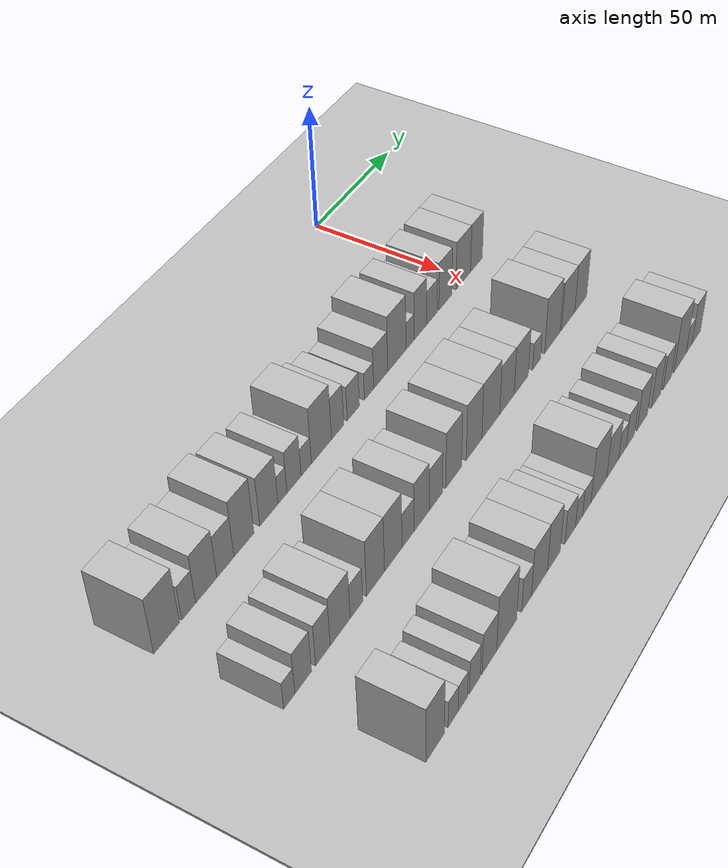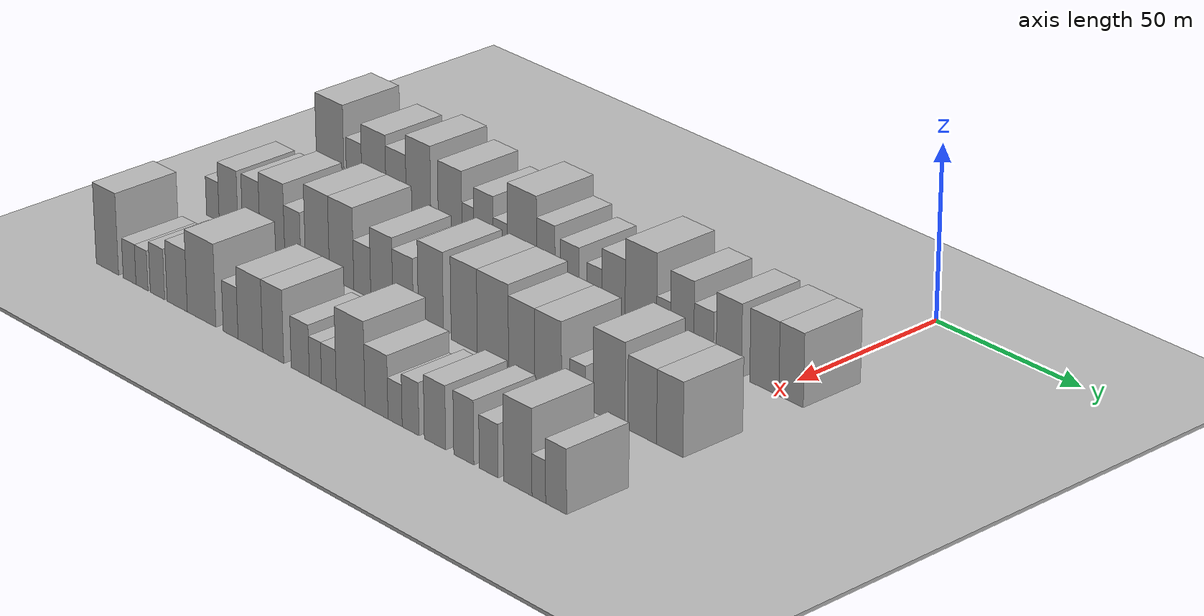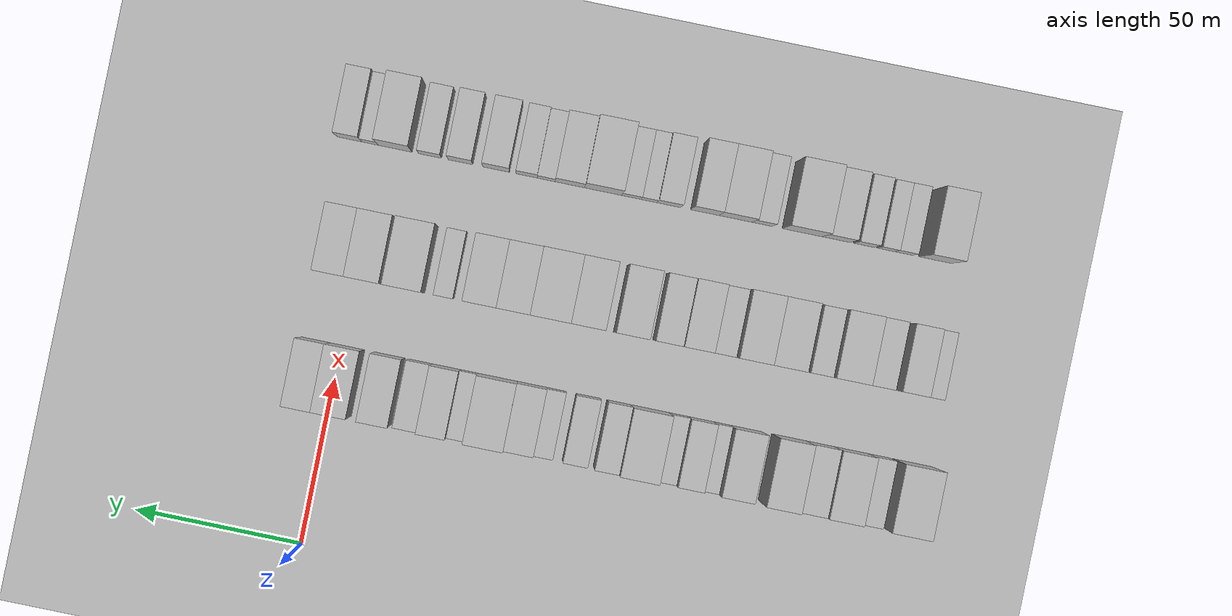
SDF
<sdf version="1.6">
 <world name="default">
  <include><name>ground_plane_1</name><uri>model://HANNAS_ground_plane</uri></include>
  <include>
   <name>ground_plane_2</name>
   <uri>model://HANNAS_ground_plane</uri>
   <pose>100 0 0  0 0 0</pose>
  </include>
  <model name="building_26">
   <static>1</static>
   <pose>50.0000 -172.1616 0 0.000000 0.000000 0.000000</pose>
   <link name="link">
    <pose>0 0 12.00 0 0 0</pose>
    <collision name="collision"><geometry><box><size>20.0000 11.8538 24.0000</size></box></geometry></collision>
    <visual name="visual">
     <cast_shadows>0</cast_shadows>
     <geometry><box><size>20.0000 11.8538 24.0000</size></box></geometry>
     <material>
      <script>
       <uri>model://HANNAS_wall/materials/scripts</uri>
       <uri>model://HANNAS_wall/materials/textures</uri>
       <name>vrc/HANNAS_wall</name>
      </script>
     </material>
    </visual>
   </link>
  </model>
  <model name="building_27">
   <static>1</static>
   <pose>50.0000 -161.9523 0 0.000000 0.000000 0.000000</pose>
   <link name="link">
    <pose>0 0 7.50 0 0 0</pose>
    <collision name="collision"><geometry><box><size>20.0000 6.5650 15.0000</size></box></geometry></collision>
    <visual name="visual">
     <cast_shadows>0</cast_shadows>
     <geometry><box><size>20.0000 6.5650 15.0000</size></box></geometry>
     <material>
      <script>
       <uri>model://HANNAS_wall/materials/scripts</uri>
       <uri>model://HANNAS_wall/materials/textures</uri>
       <name>vrc/HANNAS_wall</name>
      </script>
     </material>
    </visual>
   </link>
  </model>
  <model name="building_28">
   <static>1</static>
   <pose>50.0000 -153.5523 0 0.000000 0.000000 0.000000</pose>
   <link name="link">
    <pose>0 0 10.50 0 0 0</pose>
    <collision name="collision"><geometry><box><size>20.0000 10.2349 21.0000</size></box></geometry></collision>
    <visual name="visual">
     <cast_shadows>0</cast_shadows>
     <geometry><box><size>20.0000 10.2349 21.0000</size></box></geometry>
     <material>
      <script>
       <uri>model://HANNAS_wall/materials/scripts</uri>
       <uri>model://HANNAS_wall/materials/textures</uri>
       <name>vrc/HANNAS_wall</name>
      </script>
     </material>
    </visual>
   </link>
  </model>
  <model name="building_29">
   <static>1</static>
   <pose>50.0000 -144.1929 0 0.000000 0.000000 0.000000</pose>
   <link name="link">
    <pose>0 0 9.00 0 0 0</pose>
    <collision name="collision"><geometry><box><size>20.0000 8.4840 18.0000</size></box></geometry></collision>
    <visual name="visual">
     <cast_shadows>0</cast_shadows>
     <geometry><box><size>20.0000 8.4840 18.0000</size></box></geometry>
     <material>
      <script>
       <uri>model://HANNAS_wall/materials/scripts</uri>
       <uri>model://HANNAS_wall/materials/textures</uri>
       <name>vrc/HANNAS_wall</name>
      </script>
     </material>
    </visual>
   </link>
  </model>
  <model name="building_30">
   <static>1</static>
   <pose>50.0000 -134.8490 0 0.000000 0.000000 0.000000</pose>
   <link name="link">
    <pose>0 0 12.00 0 0 0</pose>
    <collision name="collision"><geometry><box><size>20.0000 10.2038 24.0000</size></box></geometry></collision>
    <visual name="visual">
     <cast_shadows>0</cast_shadows>
     <geometry><box><size>20.0000 10.2038 24.0000</size></box></geometry>
     <material>
      <script>
       <uri>model://HANNAS_wall/materials/scripts</uri>
       <uri>model://HANNAS_wall/materials/textures</uri>
       <name>vrc/HANNAS_wall</name>
      </script>
     </material>
    </visual>
   </link>
  </model>
  <model name="building_31">
   <static>1</static>
   <pose>50.0000 -121.8884 0 0.000000 0.000000 0.000000</pose>
   <link name="link">
    <pose>0 0 10.50 0 0 0</pose>
    <collision name="collision"><geometry><box><size>20.0000 9.7175 21.0000</size></box></geometry></collision>
    <visual name="visual">
     <cast_shadows>0</cast_shadows>
     <geometry><box><size>20.0000 9.7175 21.0000</size></box></geometry>
     <material>
      <script>
       <uri>model://HANNAS_wall/materials/scripts</uri>
       <uri>model://HANNAS_wall/materials/textures</uri>
       <name>vrc/HANNAS_wall</name>
      </script>
     </material>
    </visual>
   </link>
  </model>
  <model name="building_32">
   <static>1</static>
   <pose>50.0000 -114.6272 0 0.000000 0.000000 0.000000</pose>
   <link name="link">
    <pose>0 0 6.00 0 0 0</pose>
    <collision name="collision"><geometry><box><size>20.0000 4.8048 12.0000</size></box></geometry></collision>
    <visual name="visual">
     <cast_shadows>0</cast_shadows>
     <geometry><box><size>20.0000 4.8048 12.0000</size></box></geometry>
     <material>
      <script>
       <uri>model://HANNAS_wall/materials/scripts</uri>
       <uri>model://HANNAS_wall/materials/textures</uri>
       <name>vrc/HANNAS_wall</name>
      </script>
     </material>
    </visual>
   </link>
  </model>
  <model name="building_33">
   <static>1</static>
   <pose>50.0000 -108.3308 0 0.000000 0.000000 0.000000</pose>
   <link name="link">
    <pose>0 0 9.00 0 0 0</pose>
    <collision name="collision"><geometry><box><size>20.0000 7.7881 18.0000</size></box></geometry></collision>
    <visual name="visual">
     <cast_shadows>0</cast_shadows>
     <geometry><box><size>20.0000 7.7881 18.0000</size></box></geometry>
     <material>
      <script>
       <uri>model://HANNAS_wall/materials/scripts</uri>
       <uri>model://HANNAS_wall/materials/textures</uri>
       <name>vrc/HANNAS_wall</name>
      </script>
     </material>
    </visual>
   </link>
  </model>
  <model name="building_34">
   <static>1</static>
   <pose>50.0000 -101.5725 0 0.000000 0.000000 0.000000</pose>
   <link name="link">
    <pose>0 0 6.00 0 0 0</pose>
    <collision name="collision"><geometry><box><size>20.0000 5.7284 12.0000</size></box></geometry></collision>
    <visual name="visual">
     <cast_shadows>0</cast_shadows>
     <geometry><box><size>20.0000 5.7284 12.0000</size></box></geometry>
     <material>
      <script>
       <uri>model://HANNAS_wall/materials/scripts</uri>
       <uri>model://HANNAS_wall/materials/textures</uri>
       <name>vrc/HANNAS_wall</name>
      </script>
     </material>
    </visual>
   </link>
  </model>
  <model name="building_35">
   <static>1</static>
   <pose>50.0000 -92.9462 0 0.000000 0.000000 0.000000</pose>
   <link name="link">
    <pose>0 0 12.00 0 0 0</pose>
    <collision name="collision"><geometry><box><size>20.0000 11.5243 24.0000</size></box></geometry></collision>
    <visual name="visual">
     <cast_shadows>0</cast_shadows>
     <geometry><box><size>20.0000 11.5243 24.0000</size></box></geometry>
     <material>
      <script>
       <uri>model://HANNAS_wall/materials/scripts</uri>
       <uri>model://HANNAS_wall/materials/textures</uri>
       <name>vrc/HANNAS_wall</name>
      </script>
     </material>
    </visual>
   </link>
  </model>
  <model name="building_36">
   <static>1</static>
   <pose>50.0000 -83.5788 0 0.000000 0.000000 0.000000</pose>
   <link name="link">
    <pose>0 0 9.00 0 0 0</pose>
    <collision name="collision"><geometry><box><size>20.0000 7.2106 18.0000</size></box></geometry></collision>
    <visual name="visual">
     <cast_shadows>0</cast_shadows>
     <geometry><box><size>20.0000 7.2106 18.0000</size></box></geometry>
     <material>
      <script>
       <uri>model://HANNAS_wall/materials/scripts</uri>
       <uri>model://HANNAS_wall/materials/textures</uri>
       <name>vrc/HANNAS_wall</name>
      </script>
     </material>
    </visual>
   </link>
  </model>
  <model name="building_37">
   <static>1</static>
   <pose>50.0000 -74.3112 0 0.000000 0.000000 0.000000</pose>
   <link name="link">
    <pose>0 0 7.50 0 0 0</pose>
    <collision name="collision"><geometry><box><size>20.0000 7.3245 15.0000</size></box></geometry></collision>
    <visual name="visual">
     <cast_shadows>0</cast_shadows>
     <geometry><box><size>20.0000 7.3245 15.0000</size></box></geometry>
     <material>
      <script>
       <uri>model://HANNAS_wall/materials/scripts</uri>
       <uri>model://HANNAS_wall/materials/textures</uri>
       <name>vrc/HANNAS_wall</name>
      </script>
     </material>
    </visual>
   </link>
  </model>
  <model name="building_38">
   <static>1</static>
   <pose>50.0000 -64.7647 0 0.000000 0.000000 0.000000</pose>
   <link name="link">
    <pose>0 0 6.00 0 0 0</pose>
    <collision name="collision"><geometry><box><size>20.0000 5.7685 12.0000</size></box></geometry></collision>
    <visual name="visual">
     <cast_shadows>0</cast_shadows>
     <geometry><box><size>20.0000 5.7685 12.0000</size></box></geometry>
     <material>
      <script>
       <uri>model://HANNAS_wall/materials/scripts</uri>
       <uri>model://HANNAS_wall/materials/textures</uri>
       <name>vrc/HANNAS_wall</name>
      </script>
     </material>
    </visual>
   </link>
  </model>
  <model name="building_39">
   <static>1</static>
   <pose>50.0000 -57.4368 0 0.000000 0.000000 0.000000</pose>
   <link name="link">
    <pose>0 0 9.00 0 0 0</pose>
    <collision name="collision"><geometry><box><size>20.0000 8.8873 18.0000</size></box></geometry></collision>
    <visual name="visual">
     <cast_shadows>0</cast_shadows>
     <geometry><box><size>20.0000 8.8873 18.0000</size></box></geometry>
     <material>
      <script>
       <uri>model://HANNAS_wall/materials/scripts</uri>
       <uri>model://HANNAS_wall/materials/textures</uri>
       <name>vrc/HANNAS_wall</name>
      </script>
     </material>
    </visual>
   </link>
  </model>
  <model name="building_40">
   <static>1</static>
   <pose>50.0000 -47.0714 0 0.000000 0.000000 0.000000</pose>
   <link name="link">
    <pose>0 0 12.00 0 0 0</pose>
    <collision name="collision"><geometry><box><size>20.0000 11.8436 24.0000</size></box></geometry></collision>
    <visual name="visual">
     <cast_shadows>0</cast_shadows>
     <geometry><box><size>20.0000 11.8436 24.0000</size></box></geometry>
     <material>
      <script>
       <uri>model://HANNAS_wall/materials/scripts</uri>
       <uri>model://HANNAS_wall/materials/textures</uri>
       <name>vrc/HANNAS_wall</name>
      </script>
     </material>
    </visual>
   </link>
  </model>
  <model name="building_41">
   <static>1</static>
   <pose>50.0000 -38.5589 0 0.000000 0.000000 0.000000</pose>
   <link name="link">
    <pose>0 0 6.00 0 0 0</pose>
    <collision name="collision"><geometry><box><size>20.0000 5.1813 12.0000</size></box></geometry></collision>
    <visual name="visual">
     <cast_shadows>0</cast_shadows>
     <geometry><box><size>20.0000 5.1813 12.0000</size></box></geometry>
     <material>
      <script>
       <uri>model://HANNAS_wall/materials/scripts</uri>
       <uri>model://HANNAS_wall/materials/textures</uri>
       <name>vrc/HANNAS_wall</name>
      </script>
     </material>
    </visual>
   </link>
  </model>
  <model name="building_42">
   <static>1</static>
   <pose>50.0000 -31.6654 0 0.000000 0.000000 0.000000</pose>
   <link name="link">
    <pose>0 0 10.50 0 0 0</pose>
    <collision name="collision"><geometry><box><size>20.0000 8.6056 21.0000</size></box></geometry></collision>
    <visual name="visual">
     <cast_shadows>0</cast_shadows>
     <geometry><box><size>20.0000 8.6056 21.0000</size></box></geometry>
     <material>
      <script>
       <uri>model://HANNAS_wall/materials/scripts</uri>
       <uri>model://HANNAS_wall/materials/textures</uri>
       <name>vrc/HANNAS_wall</name>
      </script>
     </material>
    </visual>
   </link>
  </model>
  <model name="building_43">
   <static>1</static>
   <pose>50.0000 -23.7713 0 0.000000 0.000000 0.000000</pose>
   <link name="link">
    <pose>0 0 7.50 0 0 0</pose>
    <collision name="collision"><geometry><box><size>20.0000 7.1827 15.0000</size></box></geometry></collision>
    <visual name="visual">
     <cast_shadows>0</cast_shadows>
     <geometry><box><size>20.0000 7.1827 15.0000</size></box></geometry>
     <material>
      <script>
       <uri>model://HANNAS_wall/materials/scripts</uri>
       <uri>model://HANNAS_wall/materials/textures</uri>
       <name>vrc/HANNAS_wall</name>
      </script>
     </material>
    </visual>
   </link>
  </model>
  <model name="building_44">
   <static>1</static>
   <pose>50.0000 -14.5887 0 0.000000 0.000000 0.000000</pose>
   <link name="link">
    <pose>0 0 10.50 0 0 0</pose>
    <collision name="collision"><geometry><box><size>20.0000 9.1826 21.0000</size></box></geometry></collision>
    <visual name="visual">
     <cast_shadows>0</cast_shadows>
     <geometry><box><size>20.0000 9.1826 21.0000</size></box></geometry>
     <material>
      <script>
       <uri>model://HANNAS_wall/materials/scripts</uri>
       <uri>model://HANNAS_wall/materials/textures</uri>
       <name>vrc/HANNAS_wall</name>
      </script>
     </material>
    </visual>
   </link>
  </model>
  <model name="building_45">
   <static>1</static>
   <pose>50.0000 -1.8002 0 0.000000 0.000000 0.000000</pose>
   <link name="link">
    <pose>0 0 10.50 0 0 0</pose>
    <collision name="collision"><geometry><box><size>20.0000 10.3943 21.0000</size></box></geometry></collision>
    <visual name="visual">
     <cast_shadows>0</cast_shadows>
     <geometry><box><size>20.0000 10.3943 21.0000</size></box></geometry>
     <material>
      <script>
       <uri>model://HANNAS_wall/materials/scripts</uri>
       <uri>model://HANNAS_wall/materials/textures</uri>
       <name>vrc/HANNAS_wall</name>
      </script>
     </material>
    </visual>
   </link>
  </model>
  <model name="building_46">
   <static>1</static>
   <pose>50.0000 7.7302 0 0.000000 0.000000 0.000000</pose>
   <link name="link">
    <pose>0 0 10.50 0 0 0</pose>
    <collision name="collision"><geometry><box><size>20.0000 8.6666 21.0000</size></box></geometry></collision>
    <visual name="visual">
     <cast_shadows>0</cast_shadows>
     <geometry><box><size>20.0000 8.6666 21.0000</size></box></geometry>
     <material>
      <script>
       <uri>model://HANNAS_wall/materials/scripts</uri>
       <uri>model://HANNAS_wall/materials/textures</uri>
       <name>vrc/HANNAS_wall</name>
      </script>
     </material>
    </visual>
   </link>
  </model>
  <model name="building_104">
   <static>1</static>
   <pose>90.0000 -173.0271 0 0.000000 0.000000 0.000000</pose>
   <link name="link">
    <pose>0 0 6.00 0 0 0</pose>
    <collision name="collision"><geometry><box><size>20.0000 5.4462 12.0000</size></box></geometry></collision>
    <visual name="visual">
     <cast_shadows>0</cast_shadows>
     <geometry><box><size>20.0000 5.4462 12.0000</size></box></geometry>
     <material>
      <script>
       <uri>model://HANNAS_wall/materials/scripts</uri>
       <uri>model://HANNAS_wall/materials/textures</uri>
       <name>vrc/HANNAS_wall</name>
      </script>
     </material>
    </visual>
   </link>
  </model>
  <model name="building_105">
   <static>1</static>
   <pose>90.0000 -166.2222 0 0.000000 0.000000 0.000000</pose>
   <link name="link">
    <pose>0 0 9.00 0 0 0</pose>
    <collision name="collision"><geometry><box><size>20.0000 8.1636 18.0000</size></box></geometry></collision>
    <visual name="visual">
     <cast_shadows>0</cast_shadows>
     <geometry><box><size>20.0000 8.1636 18.0000</size></box></geometry>
     <material>
      <script>
       <uri>model://HANNAS_wall/materials/scripts</uri>
       <uri>model://HANNAS_wall/materials/textures</uri>
       <name>vrc/HANNAS_wall</name>
      </script>
     </material>
    </visual>
   </link>
  </model>
  <model name="building_106">
   <static>1</static>
   <pose>90.0000 -156.4348 0 0.000000 0.000000 0.000000</pose>
   <link name="link">
    <pose>0 0 9.00 0 0 0</pose>
    <collision name="collision"><geometry><box><size>20.0000 7.4114 18.0000</size></box></geometry></collision>
    <visual name="visual">
     <cast_shadows>0</cast_shadows>
     <geometry><box><size>20.0000 7.4114 18.0000</size></box></geometry>
     <material>
      <script>
       <uri>model://HANNAS_wall/materials/scripts</uri>
       <uri>model://HANNAS_wall/materials/textures</uri>
       <name>vrc/HANNAS_wall</name>
      </script>
     </material>
    </visual>
   </link>
  </model>
  <model name="building_107">
   <static>1</static>
   <pose>90.0000 -147.5158 0 0.000000 0.000000 0.000000</pose>
   <link name="link">
    <pose>0 0 10.50 0 0 0</pose>
    <collision name="collision"><geometry><box><size>20.0000 10.4265 21.0000</size></box></geometry></collision>
    <visual name="visual">
     <cast_shadows>0</cast_shadows>
     <geometry><box><size>20.0000 10.4265 21.0000</size></box></geometry>
     <material>
      <script>
       <uri>model://HANNAS_wall/materials/scripts</uri>
       <uri>model://HANNAS_wall/materials/textures</uri>
       <name>vrc/HANNAS_wall</name>
      </script>
     </material>
    </visual>
   </link>
  </model>
  <model name="building_108">
   <static>1</static>
   <pose>90.0000 -138.9474 0 0.000000 0.000000 0.000000</pose>
   <link name="link">
    <pose>0 0 7.50 0 0 0</pose>
    <collision name="collision"><geometry><box><size>20.0000 6.7103 15.0000</size></box></geometry></collision>
    <visual name="visual">
     <cast_shadows>0</cast_shadows>
     <geometry><box><size>20.0000 6.7103 15.0000</size></box></geometry>
     <material>
      <script>
       <uri>model://HANNAS_wall/materials/scripts</uri>
       <uri>model://HANNAS_wall/materials/textures</uri>
       <name>vrc/HANNAS_wall</name>
      </script>
     </material>
    </visual>
   </link>
  </model>
  <model name="building_109">
   <static>1</static>
   <pose>90.0000 -128.6199 0 0.000000 0.000000 0.000000</pose>
   <link name="link">
    <pose>0 0 12.00 0 0 0</pose>
    <collision name="collision"><geometry><box><size>20.0000 9.9446 24.0000</size></box></geometry></collision>
    <visual name="visual">
     <cast_shadows>0</cast_shadows>
     <geometry><box><size>20.0000 9.9446 24.0000</size></box></geometry>
     <material>
      <script>
       <uri>model://HANNAS_wall/materials/scripts</uri>
       <uri>model://HANNAS_wall/materials/textures</uri>
       <name>vrc/HANNAS_wall</name>
      </script>
     </material>
    </visual>
   </link>
  </model>
  <model name="building_110">
   <static>1</static>
   <pose>90.0000 -118.6538 0 0.000000 0.000000 0.000000</pose>
   <link name="link">
    <pose>0 0 12.00 0 0 0</pose>
    <collision name="collision"><geometry><box><size>20.0000 9.9877 24.0000</size></box></geometry></collision>
    <visual name="visual">
     <cast_shadows>0</cast_shadows>
     <geometry><box><size>20.0000 9.9877 24.0000</size></box></geometry>
     <material>
      <script>
       <uri>model://HANNAS_wall/materials/scripts</uri>
       <uri>model://HANNAS_wall/materials/textures</uri>
       <name>vrc/HANNAS_wall</name>
      </script>
     </material>
    </visual>
   </link>
  </model>
  <model name="building_111">
   <static>1</static>
   <pose>90.0000 -110.2204 0 0.000000 0.000000 0.000000</pose>
   <link name="link">
    <pose>0 0 7.50 0 0 0</pose>
    <collision name="collision"><geometry><box><size>20.0000 6.8791 15.0000</size></box></geometry></collision>
    <visual name="visual">
     <cast_shadows>0</cast_shadows>
     <geometry><box><size>20.0000 6.8791 15.0000</size></box></geometry>
     <material>
      <script>
       <uri>model://HANNAS_wall/materials/scripts</uri>
       <uri>model://HANNAS_wall/materials/textures</uri>
       <name>vrc/HANNAS_wall</name>
      </script>
     </material>
    </visual>
   </link>
  </model>
  <model name="building_112">
   <static>1</static>
   <pose>90.0000 -102.3337 0 0.000000 0.000000 0.000000</pose>
   <link name="link">
    <pose>0 0 10.50 0 0 0</pose>
    <collision name="collision"><geometry><box><size>20.0000 8.8944 21.0000</size></box></geometry></collision>
    <visual name="visual">
     <cast_shadows>0</cast_shadows>
     <geometry><box><size>20.0000 8.8944 21.0000</size></box></geometry>
     <material>
      <script>
       <uri>model://HANNAS_wall/materials/scripts</uri>
       <uri>model://HANNAS_wall/materials/textures</uri>
       <name>vrc/HANNAS_wall</name>
      </script>
     </material>
    </visual>
   </link>
  </model>
  <model name="building_113">
   <static>1</static>
   <pose>90.0000 -93.7982 0 0.000000 0.000000 0.000000</pose>
   <link name="link">
    <pose>0 0 9.00 0 0 0</pose>
    <collision name="collision"><geometry><box><size>20.0000 8.1766 18.0000</size></box></geometry></collision>
    <visual name="visual">
     <cast_shadows>0</cast_shadows>
     <geometry><box><size>20.0000 8.1766 18.0000</size></box></geometry>
     <material>
      <script>
       <uri>model://HANNAS_wall/materials/scripts</uri>
       <uri>model://HANNAS_wall/materials/textures</uri>
       <name>vrc/HANNAS_wall</name>
      </script>
     </material>
    </visual>
   </link>
  </model>
  <model name="building_114">
   <static>1</static>
   <pose>90.0000 -82.7721 0 0.000000 0.000000 0.000000</pose>
   <link name="link">
    <pose>0 0 12.00 0 0 0</pose>
    <collision name="collision"><geometry><box><size>20.0000 9.8756 24.0000</size></box></geometry></collision>
    <visual name="visual">
     <cast_shadows>0</cast_shadows>
     <geometry><box><size>20.0000 9.8756 24.0000</size></box></geometry>
     <material>
      <script>
       <uri>model://HANNAS_wall/materials/scripts</uri>
       <uri>model://HANNAS_wall/materials/textures</uri>
       <name>vrc/HANNAS_wall</name>
      </script>
     </material>
    </visual>
   </link>
  </model>
  <model name="building_115">
   <static>1</static>
   <pose>90.0000 -69.7514 0 0.000000 0.000000 0.000000</pose>
   <link name="link">
    <pose>0 0 12.00 0 0 0</pose>
    <collision name="collision"><geometry><box><size>20.0000 10.1658 24.0000</size></box></geometry></collision>
    <visual name="visual">
     <cast_shadows>0</cast_shadows>
     <geometry><box><size>20.0000 10.1658 24.0000</size></box></geometry>
     <material>
      <script>
       <uri>model://HANNAS_wall/materials/scripts</uri>
       <uri>model://HANNAS_wall/materials/textures</uri>
       <name>vrc/HANNAS_wall</name>
      </script>
     </material>
    </visual>
   </link>
  </model>
  <model name="building_116">
   <static>1</static>
   <pose>90.0000 -58.6785 0 0.000000 0.000000 0.000000</pose>
   <link name="link">
    <pose>0 0 12.00 0 0 0</pose>
    <collision name="collision"><geometry><box><size>20.0000 11.9799 24.0000</size></box></geometry></collision>
    <visual name="visual">
     <cast_shadows>0</cast_shadows>
     <geometry><box><size>20.0000 11.9799 24.0000</size></box></geometry>
     <material>
      <script>
       <uri>model://HANNAS_wall/materials/scripts</uri>
       <uri>model://HANNAS_wall/materials/textures</uri>
       <name>vrc/HANNAS_wall</name>
      </script>
     </material>
    </visual>
   </link>
  </model>
  <model name="building_117">
   <static>1</static>
   <pose>90.0000 -47.7257 0 0.000000 0.000000 0.000000</pose>
   <link name="link">
    <pose>0 0 10.50 0 0 0</pose>
    <collision name="collision"><geometry><box><size>20.0000 9.9258 21.0000</size></box></geometry></collision>
    <visual name="visual">
     <cast_shadows>0</cast_shadows>
     <geometry><box><size>20.0000 9.9258 21.0000</size></box></geometry>
     <material>
      <script>
       <uri>model://HANNAS_wall/materials/scripts</uri>
       <uri>model://HANNAS_wall/materials/textures</uri>
       <name>vrc/HANNAS_wall</name>
      </script>
     </material>
    </visual>
   </link>
  </model>
  <model name="building_118">
   <static>1</static>
   <pose>90.0000 -37.7651 0 0.000000 0.000000 0.000000</pose>
   <link name="link">
    <pose>0 0 10.50 0 0 0</pose>
    <collision name="collision"><geometry><box><size>20.0000 9.9953 21.0000</size></box></geometry></collision>
    <visual name="visual">
     <cast_shadows>0</cast_shadows>
     <geometry><box><size>20.0000 9.9953 21.0000</size></box></geometry>
     <material>
      <script>
       <uri>model://HANNAS_wall/materials/scripts</uri>
       <uri>model://HANNAS_wall/materials/textures</uri>
       <name>vrc/HANNAS_wall</name>
      </script>
     </material>
    </visual>
   </link>
  </model>
  <model name="building_119">
   <static>1</static>
   <pose>90.0000 -26.8522 0 0.000000 0.000000 0.000000</pose>
   <link name="link">
    <pose>0 0 6.00 0 0 0</pose>
    <collision name="collision"><geometry><box><size>20.0000 5.8307 12.0000</size></box></geometry></collision>
    <visual name="visual">
     <cast_shadows>0</cast_shadows>
     <geometry><box><size>20.0000 5.8307 12.0000</size></box></geometry>
     <material>
      <script>
       <uri>model://HANNAS_wall/materials/scripts</uri>
       <uri>model://HANNAS_wall/materials/textures</uri>
       <name>vrc/HANNAS_wall</name>
      </script>
     </material>
    </visual>
   </link>
  </model>
  <model name="building_120">
   <static>1</static>
   <pose>90.0000 -15.1710 0 0.000000 0.000000 0.000000</pose>
   <link name="link">
    <pose>0 0 12.00 0 0 0</pose>
    <collision name="collision"><geometry><box><size>20.0000 11.5316 24.0000</size></box></geometry></collision>
    <visual name="visual">
     <cast_shadows>0</cast_shadows>
     <geometry><box><size>20.0000 11.5316 24.0000</size></box></geometry>
     <material>
      <script>
       <uri>model://HANNAS_wall/materials/scripts</uri>
       <uri>model://HANNAS_wall/materials/textures</uri>
       <name>vrc/HANNAS_wall</name>
      </script>
     </material>
    </visual>
   </link>
  </model>
  <model name="building_121">
   <static>1</static>
   <pose>90.0000 -3.2397 0 0.000000 0.000000 0.000000</pose>
   <link name="link">
    <pose>0 0 10.50 0 0 0</pose>
    <collision name="collision"><geometry><box><size>20.0000 10.3311 21.0000</size></box></geometry></collision>
    <visual name="visual">
     <cast_shadows>0</cast_shadows>
     <geometry><box><size>20.0000 10.3311 21.0000</size></box></geometry>
     <material>
      <script>
       <uri>model://HANNAS_wall/materials/scripts</uri>
       <uri>model://HANNAS_wall/materials/textures</uri>
       <name>vrc/HANNAS_wall</name>
      </script>
     </material>
    </visual>
   </link>
  </model>
  <model name="building_122">
   <static>1</static>
   <pose>90.0000 6.6247 0 0.000000 0.000000 0.000000</pose>
   <link name="link">
    <pose>0 0 10.50 0 0 0</pose>
    <collision name="collision"><geometry><box><size>20.0000 9.3976 21.0000</size></box></geometry></collision>
    <visual name="visual">
     <cast_shadows>0</cast_shadows>
     <geometry><box><size>20.0000 9.3976 21.0000</size></box></geometry>
     <material>
      <script>
       <uri>model://HANNAS_wall/materials/scripts</uri>
       <uri>model://HANNAS_wall/materials/textures</uri>
       <name>vrc/HANNAS_wall</name>
      </script>
     </material>
    </visual>
   </link>
  </model>
  <model name="building_185">
   <static>1</static>
   <pose>130.0000 -166.6136 0 0.000000 0.000000 0.000000</pose>
   <link name="link">
    <pose>0 0 12.00 0 0 0</pose>
    <collision name="collision"><geometry><box><size>20.0000 9.6881 24.0000</size></box></geometry></collision>
    <visual name="visual">
     <cast_shadows>0</cast_shadows>
     <geometry><box><size>20.0000 9.6881 24.0000</size></box></geometry>
     <material>
      <script>
       <uri>model://HANNAS_wall/materials/scripts</uri>
       <uri>model://HANNAS_wall/materials/textures</uri>
       <name>vrc/HANNAS_wall</name>
      </script>
     </material>
    </visual>
   </link>
  </model>
  <model name="building_186">
   <static>1</static>
   <pose>130.0000 -157.0150 0 0.000000 0.000000 0.000000</pose>
   <link name="link">
    <pose>0 0 6.00 0 0 0</pose>
    <collision name="collision"><geometry><box><size>20.0000 5.5091 12.0000</size></box></geometry></collision>
    <visual name="visual">
     <cast_shadows>0</cast_shadows>
     <geometry><box><size>20.0000 5.5091 12.0000</size></box></geometry>
     <material>
      <script>
       <uri>model://HANNAS_wall/materials/scripts</uri>
       <uri>model://HANNAS_wall/materials/textures</uri>
       <name>vrc/HANNAS_wall</name>
      </script>
     </material>
    </visual>
   </link>
  </model>
  <model name="building_187">
   <static>1</static>
   <pose>130.0000 -151.6876 0 0.000000 0.000000 0.000000</pose>
   <link name="link">
    <pose>0 0 6.00 0 0 0</pose>
    <collision name="collision"><geometry><box><size>20.0000 5.1456 12.0000</size></box></geometry></collision>
    <visual name="visual">
     <cast_shadows>0</cast_shadows>
     <geometry><box><size>20.0000 5.1456 12.0000</size></box></geometry>
     <material>
      <script>
       <uri>model://HANNAS_wall/materials/scripts</uri>
       <uri>model://HANNAS_wall/materials/textures</uri>
       <name>vrc/HANNAS_wall</name>
      </script>
     </material>
    </visual>
   </link>
  </model>
  <model name="building_188">
   <static>1</static>
   <pose>130.0000 -145.0588 0 0.000000 0.000000 0.000000</pose>
   <link name="link">
    <pose>0 0 7.50 0 0 0</pose>
    <collision name="collision"><geometry><box><size>20.0000 6.1120 15.0000</size></box></geometry></collision>
    <visual name="visual">
     <cast_shadows>0</cast_shadows>
     <geometry><box><size>20.0000 6.1120 15.0000</size></box></geometry>
     <material>
      <script>
       <uri>model://HANNAS_wall/materials/scripts</uri>
       <uri>model://HANNAS_wall/materials/textures</uri>
       <name>vrc/HANNAS_wall</name>
      </script>
     </material>
    </visual>
   </link>
  </model>
  <model name="building_189">
   <static>1</static>
   <pose>130.0000 -136.7314 0 0.000000 0.000000 0.000000</pose>
   <link name="link">
    <pose>0 0 9.00 0 0 0</pose>
    <collision name="collision"><geometry><box><size>20.0000 8.5428 18.0000</size></box></geometry></collision>
    <visual name="visual">
     <cast_shadows>0</cast_shadows>
     <geometry><box><size>20.0000 8.5428 18.0000</size></box></geometry>
     <material>
      <script>
       <uri>model://HANNAS_wall/materials/scripts</uri>
       <uri>model://HANNAS_wall/materials/textures</uri>
       <name>vrc/HANNAS_wall</name>
      </script>
     </material>
    </visual>
   </link>
  </model>
  <model name="building_190">
   <static>1</static>
   <pose>130.0000 -126.4937 0 0.000000 0.000000 0.000000</pose>
   <link name="link">
    <pose>0 0 12.00 0 0 0</pose>
    <collision name="collision"><geometry><box><size>20.0000 11.9325 24.0000</size></box></geometry></collision>
    <visual name="visual">
     <cast_shadows>0</cast_shadows>
     <geometry><box><size>20.0000 11.9325 24.0000</size></box></geometry>
     <material>
      <script>
       <uri>model://HANNAS_wall/materials/scripts</uri>
       <uri>model://HANNAS_wall/materials/textures</uri>
       <name>vrc/HANNAS_wall</name>
      </script>
     </material>
    </visual>
   </link>
  </model>
  <model name="building_191">
   <static>1</static>
   <pose>130.0000 -114.4707 0 0.000000 0.000000 0.000000</pose>
   <link name="link">
    <pose>0 0 7.50 0 0 0</pose>
    <collision name="collision"><geometry><box><size>20.0000 6.1135 15.0000</size></box></geometry></collision>
    <visual name="visual">
     <cast_shadows>0</cast_shadows>
     <geometry><box><size>20.0000 6.1135 15.0000</size></box></geometry>
     <material>
      <script>
       <uri>model://HANNAS_wall/materials/scripts</uri>
       <uri>model://HANNAS_wall/materials/textures</uri>
       <name>vrc/HANNAS_wall</name>
      </script>
     </material>
    </visual>
   </link>
  </model>
  <model name="building_192">
   <static>1</static>
   <pose>130.0000 -106.3822 0 0.000000 0.000000 0.000000</pose>
   <link name="link">
    <pose>0 0 10.50 0 0 0</pose>
    <collision name="collision"><geometry><box><size>20.0000 10.0634 21.0000</size></box></geometry></collision>
    <visual name="visual">
     <cast_shadows>0</cast_shadows>
     <geometry><box><size>20.0000 10.0634 21.0000</size></box></geometry>
     <material>
      <script>
       <uri>model://HANNAS_wall/materials/scripts</uri>
       <uri>model://HANNAS_wall/materials/textures</uri>
       <name>vrc/HANNAS_wall</name>
      </script>
     </material>
    </visual>
   </link>
  </model>
  <model name="building_193">
   <static>1</static>
   <pose>130.0000 -97.1260 0 0.000000 0.000000 0.000000</pose>
   <link name="link">
    <pose>0 0 10.50 0 0 0</pose>
    <collision name="collision"><geometry><box><size>20.0000 8.4490 21.0000</size></box></geometry></collision>
    <visual name="visual">
     <cast_shadows>0</cast_shadows>
     <geometry><box><size>20.0000 8.4490 21.0000</size></box></geometry>
     <material>
      <script>
       <uri>model://HANNAS_wall/materials/scripts</uri>
       <uri>model://HANNAS_wall/materials/textures</uri>
       <name>vrc/HANNAS_wall</name>
      </script>
     </material>
    </visual>
   </link>
  </model>
  <model name="building_194">
   <static>1</static>
   <pose>130.0000 -86.2976 0 0.000000 0.000000 0.000000</pose>
   <link name="link">
    <pose>0 0 7.50 0 0 0</pose>
    <collision name="collision"><geometry><box><size>20.0000 7.2079 15.0000</size></box></geometry></collision>
    <visual name="visual">
     <cast_shadows>0</cast_shadows>
     <geometry><box><size>20.0000 7.2079 15.0000</size></box></geometry>
     <material>
      <script>
       <uri>model://HANNAS_wall/materials/scripts</uri>
       <uri>model://HANNAS_wall/materials/textures</uri>
       <name>vrc/HANNAS_wall</name>
      </script>
     </material>
    </visual>
   </link>
  </model>
  <model name="building_195">
   <static>1</static>
   <pose>130.0000 -80.2771 0 0.000000 0.000000 0.000000</pose>
   <link name="link">
    <pose>0 0 6.00 0 0 0</pose>
    <collision name="collision"><geometry><box><size>20.0000 4.8331 12.0000</size></box></geometry></collision>
    <visual name="visual">
     <cast_shadows>0</cast_shadows>
     <geometry><box><size>20.0000 4.8331 12.0000</size></box></geometry>
     <material>
      <script>
       <uri>model://HANNAS_wall/materials/scripts</uri>
       <uri>model://HANNAS_wall/materials/textures</uri>
       <name>vrc/HANNAS_wall</name>
      </script>
     </material>
    </visual>
   </link>
  </model>
  <model name="building_196">
   <static>1</static>
   <pose>130.0000 -74.9679 0 0.000000 0.000000 0.000000</pose>
   <link name="link">
    <pose>0 0 6.00 0 0 0</pose>
    <collision name="collision"><geometry><box><size>20.0000 5.7854 12.0000</size></box></geometry></collision>
    <visual name="visual">
     <cast_shadows>0</cast_shadows>
     <geometry><box><size>20.0000 5.7854 12.0000</size></box></geometry>
     <material>
      <script>
       <uri>model://HANNAS_wall/materials/scripts</uri>
       <uri>model://HANNAS_wall/materials/textures</uri>
       <name>vrc/HANNAS_wall</name>
      </script>
     </material>
    </visual>
   </link>
  </model>
  <model name="building_197">
   <static>1</static>
   <pose>130.0000 -66.4748 0 0.000000 0.000000 0.000000</pose>
   <link name="link">
    <pose>0 0 12.00 0 0 0</pose>
    <collision name="collision"><geometry><box><size>20.0000 11.2006 24.0000</size></box></geometry></collision>
    <visual name="visual">
     <cast_shadows>0</cast_shadows>
     <geometry><box><size>20.0000 11.2006 24.0000</size></box></geometry>
     <material>
      <script>
       <uri>model://HANNAS_wall/materials/scripts</uri>
       <uri>model://HANNAS_wall/materials/textures</uri>
       <name>vrc/HANNAS_wall</name>
      </script>
     </material>
    </visual>
   </link>
  </model>
  <model name="building_198">
   <static>1</static>
   <pose>130.0000 -56.4534 0 0.000000 0.000000 0.000000</pose>
   <link name="link">
    <pose>0 0 9.00 0 0 0</pose>
    <collision name="collision"><geometry><box><size>20.0000 8.8424 18.0000</size></box></geometry></collision>
    <visual name="visual">
     <cast_shadows>0</cast_shadows>
     <geometry><box><size>20.0000 8.8424 18.0000</size></box></geometry>
     <material>
      <script>
       <uri>model://HANNAS_wall/materials/scripts</uri>
       <uri>model://HANNAS_wall/materials/textures</uri>
       <name>vrc/HANNAS_wall</name>
      </script>
     </material>
    </visual>
   </link>
  </model>
  <model name="building_199">
   <static>1</static>
   <pose>130.0000 -49.3339 0 0.000000 0.000000 0.000000</pose>
   <link name="link">
    <pose>0 0 6.00 0 0 0</pose>
    <collision name="collision"><geometry><box><size>20.0000 5.3965 12.0000</size></box></geometry></collision>
    <visual name="visual">
     <cast_shadows>0</cast_shadows>
     <geometry><box><size>20.0000 5.3965 12.0000</size></box></geometry>
     <material>
      <script>
       <uri>model://HANNAS_wall/materials/scripts</uri>
       <uri>model://HANNAS_wall/materials/textures</uri>
       <name>vrc/HANNAS_wall</name>
      </script>
     </material>
    </visual>
   </link>
  </model>
  <model name="building_200">
   <static>1</static>
   <pose>130.0000 -43.4416 0 0.000000 0.000000 0.000000</pose>
   <link name="link">
    <pose>0 0 7.50 0 0 0</pose>
    <collision name="collision"><geometry><box><size>20.0000 6.3882 15.0000</size></box></geometry></collision>
    <visual name="visual">
     <cast_shadows>0</cast_shadows>
     <geometry><box><size>20.0000 6.3882 15.0000</size></box></geometry>
     <material>
      <script>
       <uri>model://HANNAS_wall/materials/scripts</uri>
       <uri>model://HANNAS_wall/materials/textures</uri>
       <name>vrc/HANNAS_wall</name>
      </script>
     </material>
    </visual>
   </link>
  </model>
  <model name="building_201">
   <static>1</static>
   <pose>130.0000 -34.2349 0 0.000000 0.000000 0.000000</pose>
   <link name="link">
    <pose>0 0 9.00 0 0 0</pose>
    <collision name="collision"><geometry><box><size>20.0000 8.0253 18.0000</size></box></geometry></collision>
    <visual name="visual">
     <cast_shadows>0</cast_shadows>
     <geometry><box><size>20.0000 8.0253 18.0000</size></box></geometry>
     <material>
      <script>
       <uri>model://HANNAS_wall/materials/scripts</uri>
       <uri>model://HANNAS_wall/materials/textures</uri>
       <name>vrc/HANNAS_wall</name>
      </script>
     </material>
    </visual>
   </link>
  </model>
  <model name="building_202">
   <static>1</static>
   <pose>130.0000 -23.5042 0 0.000000 0.000000 0.000000</pose>
   <link name="link">
    <pose>0 0 9.00 0 0 0</pose>
    <collision name="collision"><geometry><box><size>20.0000 7.4360 18.0000</size></box></geometry></collision>
    <visual name="visual">
     <cast_shadows>0</cast_shadows>
     <geometry><box><size>20.0000 7.4360 18.0000</size></box></geometry>
     <material>
      <script>
       <uri>model://HANNAS_wall/materials/scripts</uri>
       <uri>model://HANNAS_wall/materials/textures</uri>
       <name>vrc/HANNAS_wall</name>
      </script>
     </material>
    </visual>
   </link>
  </model>
  <model name="building_203">
   <static>1</static>
   <pose>130.0000 -14.3435 0 0.000000 0.000000 0.000000</pose>
   <link name="link">
    <pose>0 0 7.50 0 0 0</pose>
    <collision name="collision"><geometry><box><size>20.0000 6.8855 15.0000</size></box></geometry></collision>
    <visual name="visual">
     <cast_shadows>0</cast_shadows>
     <geometry><box><size>20.0000 6.8855 15.0000</size></box></geometry>
     <material>
      <script>
       <uri>model://HANNAS_wall/materials/scripts</uri>
       <uri>model://HANNAS_wall/materials/textures</uri>
       <name>vrc/HANNAS_wall</name>
      </script>
     </material>
    </visual>
   </link>
  </model>
  <model name="building_204">
   <static>1</static>
   <pose>130.0000 -3.7618 0 0.000000 0.000000 0.000000</pose>
   <link name="link">
    <pose>0 0 12.00 0 0 0</pose>
    <collision name="collision"><geometry><box><size>20.0000 10.2779 24.0000</size></box></geometry></collision>
    <visual name="visual">
     <cast_shadows>0</cast_shadows>
     <geometry><box><size>20.0000 10.2779 24.0000</size></box></geometry>
     <material>
      <script>
       <uri>model://HANNAS_wall/materials/scripts</uri>
       <uri>model://HANNAS_wall/materials/textures</uri>
       <name>vrc/HANNAS_wall</name>
      </script>
     </material>
    </visual>
   </link>
  </model>
  <model name="building_205">
   <static>1</static>
   <pose>130.0000 3.8243 0 0.000000 0.000000 0.000000</pose>
   <link name="link">
    <pose>0 0 6.00 0 0 0</pose>
    <collision name="collision"><geometry><box><size>20.0000 4.8943 12.0000</size></box></geometry></collision>
    <visual name="visual">
     <cast_shadows>0</cast_shadows>
     <geometry><box><size>20.0000 4.8943 12.0000</size></box></geometry>
     <material>
      <script>
       <uri>model://HANNAS_wall/materials/scripts</uri>
       <uri>model://HANNAS_wall/materials/textures</uri>
       <name>vrc/HANNAS_wall</name>
      </script>
     </material>
    </visual>
   </link>
  </model>
  <model name="building_206">
   <static>1</static>
   <pose>130.0000 9.9799 0 0.000000 0.000000 0.000000</pose>
   <link name="link">
    <pose>0 0 9.00 0 0 0</pose>
    <collision name="collision"><geometry><box><size>20.0000 7.4170 18.0000</size></box></geometry></collision>
    <visual name="visual">
     <cast_shadows>0</cast_shadows>
     <geometry><box><size>20.0000 7.4170 18.0000</size></box></geometry>
     <material>
      <script>
       <uri>model://HANNAS_wall/materials/scripts</uri>
       <uri>model://HANNAS_wall/materials/textures</uri>
       <name>vrc/HANNAS_wall</name>
      </script>
     </material>
    </visual>
   </link>
  </model>
 </world>
</sdf>
